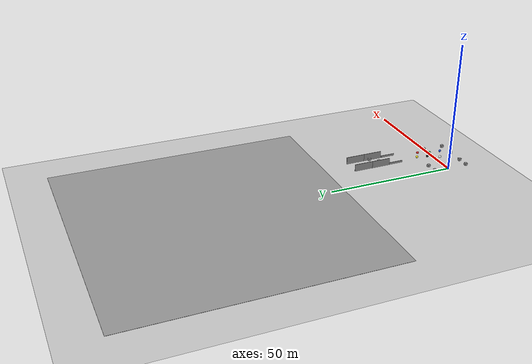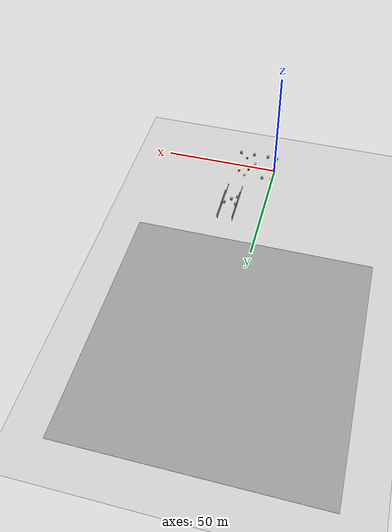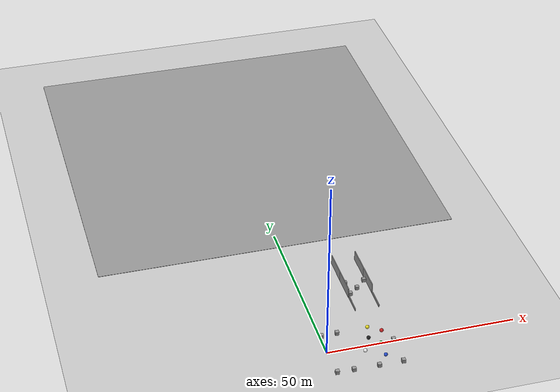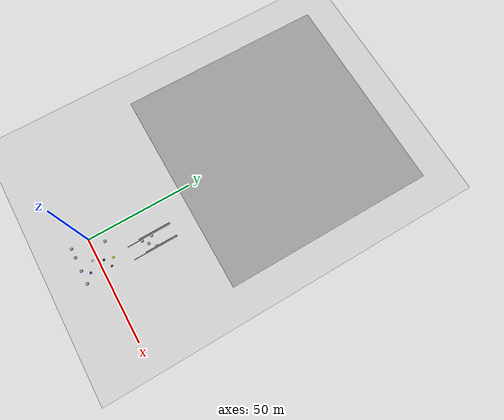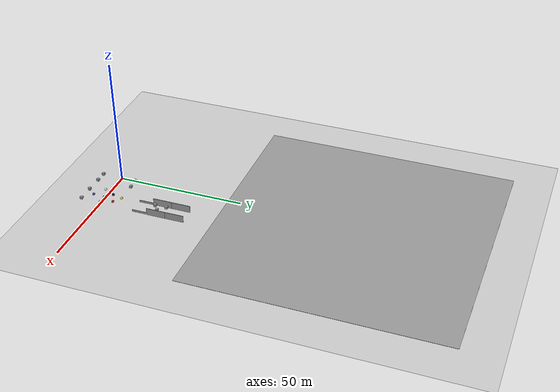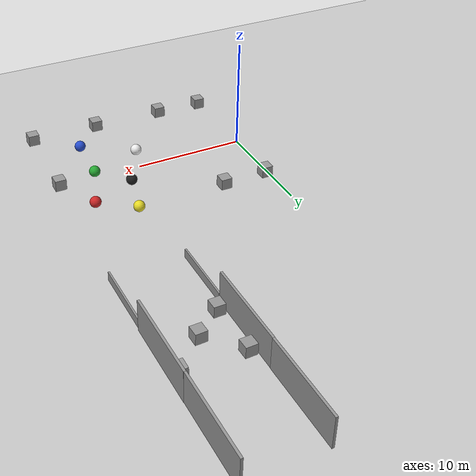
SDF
<sdf version="1.6">
 <world name="default">
  <light name="sun" type="directional">
   <pose>0 0 10 0 -0 0</pose>
   <diffuse>0.8 0.8 0.8 1</diffuse>
   <specular>0.2 0.2 0.2 1</specular>
   <attenuation>
    <range>1000</range>
    <constant>0.9</constant>
    <linear>0.01</linear>
    <quadratic>0.001</quadratic>
   </attenuation>
   <direction>-0.5 0.1 -0.9</direction>
  </light>
  <model name="ground_plane">
   <static>1</static>
   <link name="link">
    <collision name="collision">
     <geometry><plane><normal>0 0 1</normal><size>100 100</size></plane></geometry>
     <surface>
      <contact><collide_bitmask>65535</collide_bitmask></contact>
      <friction><ode><mu>100</mu><mu2>50</mu2></ode></friction>
     </surface>
    </collision>
    <visual name="visual">
     <cast_shadows>0</cast_shadows>
     <geometry><plane><normal>0 0 1</normal><size>100 100</size></plane></geometry>
     <material>
      <script><uri>file://media/materials/scripts/gazebo.material</uri><name>Gazebo/Grey</name></script>
     </material>
    </visual>
   </link>
  </model>
  <gravity>0 0 -9.8</gravity>
  <magnetic_field>6e-06 2.3e-05 -4.2e-05</magnetic_field>
  <atmosphere type="adiabatic"/>
  <physics name="default_physics" default="0" type="ode">
   <max_step_size>0.001</max_step_size>
   <real_time_factor>1</real_time_factor>
   <real_time_update_rate>1000</real_time_update_rate>
  </physics>
  <scene><ambient>0.4 0.4 0.4 1</ambient><background>0.7 0.7 0.7 1</background><shadows>1</shadows></scene>
  <audio><device>default</device></audio>
  <spherical_coordinates>
   <surface_model>EARTH_WGS84</surface_model>
   <latitude_deg>0</latitude_deg>
   <longitude_deg>0</longitude_deg>
   <elevation>0</elevation>
   <heading_deg>0</heading_deg>
  </spherical_coordinates>
  <model name="unit_sphere">
   <pose>15.7935 4.16764 0.49999 0 -0 0</pose>
   <link name="link">
    <inertial>
     <mass>1</mass>
     <inertia><ixx>0.1</ixx><ixy>0</ixy><ixz>0</ixz><iyy>0.1</iyy><iyz>0</iyz><izz>0.1</izz></inertia>
    </inertial>
    <collision name="collision"><geometry><sphere><radius>0.5</radius></sphere></geometry></collision>
    <visual name="visual">
     <geometry><sphere><radius>0.5</radius></sphere></geometry>
     <material>
      <script><name>Gazebo/Red</name><uri>file://media/materials/scripts/gazebo.material</uri></script>
     </material>
    </visual>
   </link>
  </model>
  <model name="unit_sphere_0">
   <pose>14.1862 -0.336793 0.49999 0 -0 0</pose>
   <link name="link">
    <inertial>
     <mass>1</mass>
     <inertia><ixx>0.1</ixx><ixy>0</ixy><ixz>0</ixz><iyy>0.1</iyy><iyz>0</iyz><izz>0.1</izz></inertia>
    </inertial>
    <collision name="collision"><geometry><sphere><radius>0.5</radius></sphere></geometry></collision>
    <visual name="visual">
     <geometry><sphere><radius>0.5</radius></sphere></geometry>
     <material>
      <script><name>Gazebo/Green</name><uri>file://media/materials/scripts/gazebo.material</uri></script>
     </material>
    </visual>
   </link>
  </model>
  <model name="unit_sphere_1">
   <pose>13.9059 -4.94913 0.49999 0 -0 0</pose>
   <link name="link">
    <inertial>
     <mass>1</mass>
     <inertia><ixx>0.1</ixx><ixy>0</ixy><ixz>0</ixz><iyy>0.1</iyy><iyz>0</iyz><izz>0.1</izz></inertia>
    </inertial>
    <collision name="collision"><geometry><sphere><radius>0.5</radius></sphere></geometry></collision>
    <visual name="visual">
     <geometry><sphere><radius>0.5</radius></sphere></geometry>
     <material>
      <script><name>Gazebo/Blue</name><uri>file://media/materials/scripts/gazebo.material</uri></script>
     </material>
    </visual>
   </link>
  </model>
  <model name="ground_plane_0">
   <static>1</static>
   <link name="link">
    <collision name="collision">
     <geometry><plane><normal>0 0 1</normal><size>100 100</size></plane></geometry>
     <surface><friction><ode><mu>100</mu><mu2>50</mu2></ode></friction></surface>
    </collision>
    <visual name="visual">
     <cast_shadows>0</cast_shadows>
     <geometry><plane><normal>0 0 1</normal><size>100 100</size></plane></geometry>
     <material>
      <script><uri>file://media/materials/scripts/gazebo.material</uri><name>Gazebo/Grey</name></script>
     </material>
    </visual>
   </link>
   <pose>0.033354 95.0033 0 0 -0 0</pose>
  </model>
  <model name="grey_wall_clone_clone_clone_clone_clone_0_clone">
   <static>1</static>
   <link name="link">
    <pose>0 0 1.4 0 -0 0</pose>
    <collision name="collision"><geometry><box><size>7.5 0.2 2.8</size></box></geometry></collision>
    <visual name="visual">
     <cast_shadows>0</cast_shadows>
     <geometry><box><size>7.5 0.2 2.8</size></box></geometry>
     <material>
      <script>
       <uri>model://grey_wall/materials/scripts</uri>
       <uri>model://grey_wall/materials/textures</uri>
       <name>vrc/grey_wall</name>
      </script>
     </material>
    </visual>
   </link>
   <pose>11.7534 23.1982 0 0 -0 1.57375</pose>
  </model>
  <model name="grey_wall_clone_clone_clone_clone_clone_0_clone_clone">
   <static>1</static>
   <link name="link">
    <pose>0 0 1.4 0 -0 0</pose>
    <collision name="collision"><geometry><box><size>7.5 0.2 2.8</size></box></geometry></collision>
    <visual name="visual">
     <cast_shadows>0</cast_shadows>
     <geometry><box><size>7.5 0.2 2.8</size></box></geometry>
     <material>
      <script>
       <uri>model://grey_wall/materials/scripts</uri>
       <uri>model://grey_wall/materials/textures</uri>
       <name>vrc/grey_wall</name>
      </script>
     </material>
    </visual>
   </link>
   <pose>18.3259 23.4162 0 0 -0 1.57375</pose>
  </model>
  <model name="grey_wall_clone_clone_clone_clone_clone_0_clone_clone_clone">
   <static>1</static>
   <link name="link">
    <pose>0 0 1.4 0 -0 0</pose>
    <collision name="collision"><geometry><box><size>7.5 0.2 2.8</size></box></geometry></collision>
    <visual name="visual">
     <cast_shadows>0</cast_shadows>
     <geometry><box><size>7.5 0.2 2.8</size></box></geometry>
     <material>
      <script>
       <uri>model://grey_wall/materials/scripts</uri>
       <uri>model://grey_wall/materials/textures</uri>
       <name>vrc/grey_wall</name>
      </script>
     </material>
    </visual>
   </link>
   <pose>18.2867 30.893 0 0 -0 1.57375</pose>
  </model>
  <model name="grey_wall_clone_clone_clone_clone_clone_0_clone_clone_clone_0">
   <static>1</static>
   <link name="link">
    <pose>0 0 1.4 0 -0 0</pose>
    <collision name="collision"><geometry><box><size>7.5 0.2 2.8</size></box></geometry></collision>
    <visual name="visual">
     <cast_shadows>0</cast_shadows>
     <geometry><box><size>7.5 0.2 2.8</size></box></geometry>
     <material>
      <script>
       <uri>model://grey_wall/materials/scripts</uri>
       <uri>model://grey_wall/materials/textures</uri>
       <name>vrc/grey_wall</name>
      </script>
     </material>
    </visual>
   </link>
   <pose>11.7525 30.698 0 0 -0 1.57375</pose>
  </model>
  <model name="unit_box_clone_0">
   <pose>17.681 24.9413 0.54941 -3.07078 1.50898 -3.08801</pose>
   <link name="unit_box_clone_0::unit_box_clone_0::unit_box_clone_0::unit_box_clone_0::unit_box_clone_0::unit_box_clone_0::unit_box_clone_0::unit_box_clone_0::link">
    <inertial>
     <mass>1</mass>
     <inertia>
      <ixx>0.166667</ixx>
      <ixy>0</ixy>
      <ixz>0</ixz>
      <iyy>0.166667</iyy>
      <iyz>0</iyz>
      <izz>0.166667</izz>
     </inertia>
    </inertial>
    <collision name="collision"><geometry><box><size>1 1 1</size></box></geometry></collision>
    <visual name="visual">
     <geometry><box><size>1 1 1</size></box></geometry>
     <material>
      <script><name>Gazebo/Grey</name><uri>file://media/materials/scripts/gazebo.material</uri></script>
     </material>
    </visual>
   </link>
  </model>
  <model name="unit_box_clone_2">
   <pose>12.56 20.4052 0.500085 -1.57071 7.9e-05 1.58315</pose>
   <link name="unit_box_clone_2::unit_box_clone_2::unit_box_clone_2::unit_box_clone_2::unit_box_clone_2::unit_box_clone_2::link">
    <inertial>
     <mass>1</mass>
     <inertia>
      <ixx>0.166667</ixx>
      <ixy>0</ixy>
      <ixz>0</ixz>
      <iyy>0.166667</iyy>
      <iyz>0</iyz>
      <izz>0.166667</izz>
     </inertia>
    </inertial>
    <collision name="collision"><geometry><box><size>1 1 1</size></box></geometry></collision>
    <visual name="visual">
     <geometry><box><size>1 1 1</size></box></geometry>
     <material>
      <script><name>Gazebo/Grey</name><uri>file://media/materials/scripts/gazebo.material</uri></script>
     </material>
    </visual>
   </link>
  </model>
  <model name="unit_sphere_2">
   <pose>9.45407 -2.15167 0.49999 0 -0 0</pose>
   <link name="link">
    <inertial>
     <mass>1</mass>
     <inertia><ixx>0.1</ixx><ixy>0</ixy><ixz>0</ixz><iyy>0.1</iyy><iyz>0</iyz><izz>0.1</izz></inertia>
    </inertial>
    <collision name="collision"><geometry><sphere><radius>0.5</radius></sphere></geometry></collision>
    <visual name="visual">
     <geometry><sphere><radius>0.5</radius></sphere></geometry>
     <material>
      <script><name>Gazebo/White</name><uri>file://media/materials/scripts/gazebo.material</uri></script>
     </material>
    </visual>
   </link>
  </model>
  <model name="unit_sphere_3">
   <pose>11.7082 2.2915 0.49999 0 -0 0</pose>
   <link name="link">
    <inertial>
     <mass>1</mass>
     <inertia><ixx>0.1</ixx><ixy>0</ixy><ixz>0</ixz><iyy>0.1</iyy><iyz>0</iyz><izz>0.1</izz></inertia>
    </inertial>
    <collision name="collision"><geometry><sphere><radius>0.5</radius></sphere></geometry></collision>
    <visual name="visual">
     <geometry><sphere><radius>0.5</radius></sphere></geometry>
     <material>
      <script><name>Gazebo/Black</name><uri>file://media/materials/scripts/gazebo.material</uri></script>
     </material>
    </visual>
   </link>
  </model>
  <model name="Untitled">
   <pose>15.0604 16.5465 0 0 -0 0</pose>
   <link name="Wall_0">
    <collision name="Wall_0_Collision">
     <geometry><box><size>5.817 0.15 0.8</size></box></geometry>
     <pose>0 0 0.4 0 -0 0</pose>
    </collision>
    <visual name="Wall_0_Visual">
     <pose>0 0 0.4 0 -0 0</pose>
     <geometry><box><size>5.817 0.15 0.8</size></box></geometry>
     <material>
      <script><uri>file://media/materials/scripts/gazebo.material</uri><name>Gazebo/Grey</name></script>
      <ambient>1 1 1 1</ambient>
     </material>
     <meta><layer>0</layer></meta>
    </visual>
    <pose>-3.215 0 0 0 -0 1.5708</pose>
   </link>
   <link name="Wall_2">
    <collision name="Wall_2_Collision">
     <geometry><box><size>5.817 0.15 0.8</size></box></geometry>
     <pose>0 0 0.4 0 -0 0</pose>
    </collision>
    <visual name="Wall_2_Visual">
     <pose>0 0 0.4 0 -0 0</pose>
     <geometry><box><size>5.817 0.15 0.8</size></box></geometry>
     <material>
      <script><uri>file://media/materials/scripts/gazebo.material</uri><name>Gazebo/Grey</name></script>
      <ambient>1 1 1 1</ambient>
     </material>
     <meta><layer>0</layer></meta>
    </visual>
    <pose>3.215 0 0 0 -0 1.5708</pose>
   </link>
   <static>1</static>
  </model>
  <model name="unit_sphere_4">
   <pose>12.6956 6.33189 0.49999 0 -0 0</pose>
   <link name="link">
    <inertial>
     <mass>1</mass>
     <inertia><ixx>0.1</ixx><ixy>0</ixy><ixz>0</ixz><iyy>0.1</iyy><iyz>0</iyz><izz>0.1</izz></inertia>
    </inertial>
    <collision name="collision"><geometry><sphere><radius>0.5</radius></sphere></geometry></collision>
    <visual name="visual">
     <geometry><sphere><radius>0.5</radius></sphere></geometry>
     <material>
      <script><name>Gazebo/Yellow</name><uri>file://media/materials/scripts/gazebo.material</uri></script>
     </material>
    </visual>
   </link>
  </model>
  <model name="unit_box_3">
   <pose>17.6261 0.078353 0.499995 -5e-06 4e-06 -0.004724</pose>
   <link name="unit_box_3::link">
    <inertial>
     <mass>1</mass>
     <inertia>
      <ixx>0.166667</ixx>
      <ixy>0</ixy>
      <ixz>0</ixz>
      <iyy>0.166667</iyy>
      <iyz>0</iyz>
      <izz>0.166667</izz>
     </inertia>
    </inertial>
    <collision name="collision"><geometry><box><size>1 1 1</size></box></geometry></collision>
    <visual name="visual">
     <geometry><box><size>1 1 1</size></box></geometry>
     <material>
      <script><name>Gazebo/Grey</name><uri>file://media/materials/scripts/gazebo.material</uri></script>
     </material>
    </visual>
   </link>
  </model>
  <model name="unit_box_3_clone">
   <pose>4.51872 6.13593 0.499995 -5e-06 -4e-06 -0.008599</pose>
   <link name="unit_box_3_clone::unit_box_3::link">
    <inertial>
     <mass>1</mass>
     <inertia>
      <ixx>0.166667</ixx>
      <ixy>0</ixy>
      <ixz>0</ixz>
      <iyy>0.166667</iyy>
      <iyz>0</iyz>
      <izz>0.166667</izz>
     </inertia>
    </inertial>
    <collision name="collision"><geometry><box><size>1 1 1</size></box></geometry></collision>
    <visual name="visual">
     <geometry><box><size>1 1 1</size></box></geometry>
     <material>
      <script><name>Gazebo/Grey</name><uri>file://media/materials/scripts/gazebo.material</uri></script>
     </material>
    </visual>
   </link>
  </model>
  <model name="unit_box">
   <pose>17.4449 -8.2064 0.499993 5e-06 -0 -0.010141</pose>
   <link name="unit_box::link">
    <inertial>
     <mass>1</mass>
     <inertia>
      <ixx>0.166667</ixx>
      <ixy>0</ixy>
      <ixz>0</ixz>
      <iyy>0.166667</iyy>
      <iyz>0</iyz>
      <izz>0.166667</izz>
     </inertia>
    </inertial>
    <collision name="collision"><geometry><box><size>1 1 1</size></box></geometry></collision>
    <visual name="visual">
     <geometry><box><size>1 1 1</size></box></geometry>
     <material>
      <script><name>Gazebo/Grey</name><uri>file://media/materials/scripts/gazebo.material</uri></script>
     </material>
    </visual>
   </link>
  </model>
  <model name="unit_box_3_clone_clone">
   <pose>0.314815 -7.96358 0.499996 9e-06 0 -0.036314</pose>
   <link name="unit_box_3_clone_clone::unit_box_3_clone::unit_box_3::link">
    <inertial>
     <mass>1</mass>
     <inertia>
      <ixx>0.166667</ixx>
      <ixy>0</ixy>
      <ixz>0</ixz>
      <iyy>0.166667</iyy>
      <iyz>0</iyz>
      <izz>0.166667</izz>
     </inertia>
    </inertial>
    <collision name="collision"><geometry><box><size>1 1 1</size></box></geometry></collision>
    <visual name="visual">
     <geometry><box><size>1 1 1</size></box></geometry>
     <material>
      <script><name>Gazebo/Grey</name><uri>file://media/materials/scripts/gazebo.material</uri></script>
     </material>
    </visual>
   </link>
  </model>
  <model name="unit_box_3_clone_clone_clone">
   <pose>0.37454 6.00084 0.499994 4e-06 -4e-06 -0.008599</pose>
   <link name="unit_box_3_clone_clone_clone::unit_box_3_clone::unit_box_3::link">
    <inertial>
     <mass>1</mass>
     <inertia>
      <ixx>0.166667</ixx>
      <ixy>0</ixy>
      <ixz>0</ixz>
      <iyy>0.166667</iyy>
      <iyz>0</iyz>
      <izz>0.166667</izz>
     </inertia>
    </inertial>
    <collision name="collision"><geometry><box><size>1 1 1</size></box></geometry></collision>
    <visual name="visual">
     <geometry><box><size>1 1 1</size></box></geometry>
     <material>
      <script><name>Gazebo/Grey</name><uri>file://media/materials/scripts/gazebo.material</uri></script>
     </material>
    </visual>
   </link>
  </model>
  <model name="unit_box_3_clone_clone_clone_0">
   <pose>4.61768 -8.07535 0.499995 6e-06 3e-06 -0.011106</pose>
   <link name="unit_box_3_clone_clone_clone_0::unit_box_3_clone_clone::unit_box_3_clone::unit_box_3::link">
    <inertial>
     <mass>1</mass>
     <inertia>
      <ixx>0.166667</ixx>
      <ixy>0</ixy>
      <ixz>0</ixz>
      <iyy>0.166667</iyy>
      <iyz>0</iyz>
      <izz>0.166667</izz>
     </inertia>
    </inertial>
    <collision name="collision"><geometry><box><size>1 1 1</size></box></geometry></collision>
    <visual name="visual">
     <geometry><box><size>1 1 1</size></box></geometry>
     <material>
      <script><name>Gazebo/Grey</name><uri>file://media/materials/scripts/gazebo.material</uri></script>
     </material>
    </visual>
   </link>
  </model>
  <model name="unit_box_3_clone_clone_clone_0_clone">
   <pose>11.155 -8.18947 0.499995 -6e-06 3e-06 -0.011118</pose>
   <link name="unit_box_3_clone_clone_clone_0::unit_box_3_clone_clone::unit_box_3_clone::unit_box_3::link">
    <inertial>
     <mass>1</mass>
     <inertia>
      <ixx>0.166667</ixx>
      <ixy>0</ixy>
      <ixz>0</ixz>
      <iyy>0.166667</iyy>
      <iyz>0</iyz>
      <izz>0.166667</izz>
     </inertia>
    </inertial>
    <collision name="collision"><geometry><box><size>1 1 1</size></box></geometry></collision>
    <visual name="visual">
     <geometry><box><size>1 1 1</size></box></geometry>
     <material>
      <script><name>Gazebo/Grey</name><uri>file://media/materials/scripts/gazebo.material</uri></script>
     </material>
    </visual>
   </link>
  </model>
  <model name="unit_box_clone_2_clone">
   <pose>12.4473 24.9532 0.499996 -1.57081 -0 1.59572</pose>
   <link name="unit_box_clone_2_clone::unit_box_clone_2_clone::unit_box_clone_2::unit_box_clone_2::link">
    <inertial>
     <mass>1</mass>
     <inertia>
      <ixx>0.166667</ixx>
      <ixy>0</ixy>
      <ixz>0</ixz>
      <iyy>0.166667</iyy>
      <iyz>0</iyz>
      <izz>0.166667</izz>
     </inertia>
    </inertial>
    <collision name="collision"><geometry><box><size>1 1 1</size></box></geometry></collision>
    <visual name="visual">
     <geometry><box><size>1 1 1</size></box></geometry>
     <material>
      <script><name>Gazebo/Grey</name><uri>file://media/materials/scripts/gazebo.material</uri></script>
     </material>
    </visual>
   </link>
  </model>
  <model name="unit_box_clone_2_clone_0">
   <pose>14.9871 22.3289 0.499995 -1.57079 0 1.60313</pose>
   <link name="unit_box_clone_2_clone_0::unit_box_clone_2_clone_0::unit_box_clone_2_clone_0::unit_box_clone_2_clone_0::unit_box_clone_2_clone_0::unit_box_clone_2::unit_box_clone_2::link">
    <inertial>
     <mass>1</mass>
     <inertia>
      <ixx>0.166667</ixx>
      <ixy>0</ixy>
      <ixz>0</ixz>
      <iyy>0.166667</iyy>
      <iyz>0</iyz>
      <izz>0.166667</izz>
     </inertia>
    </inertial>
    <collision name="collision"><geometry><box><size>1 1 1</size></box></geometry></collision>
    <visual name="visual">
     <geometry><box><size>1 1 1</size></box></geometry>
     <material>
      <script><name>Gazebo/Grey</name><uri>file://media/materials/scripts/gazebo.material</uri></script>
     </material>
    </visual>
   </link>
  </model>
 </world>
</sdf>
